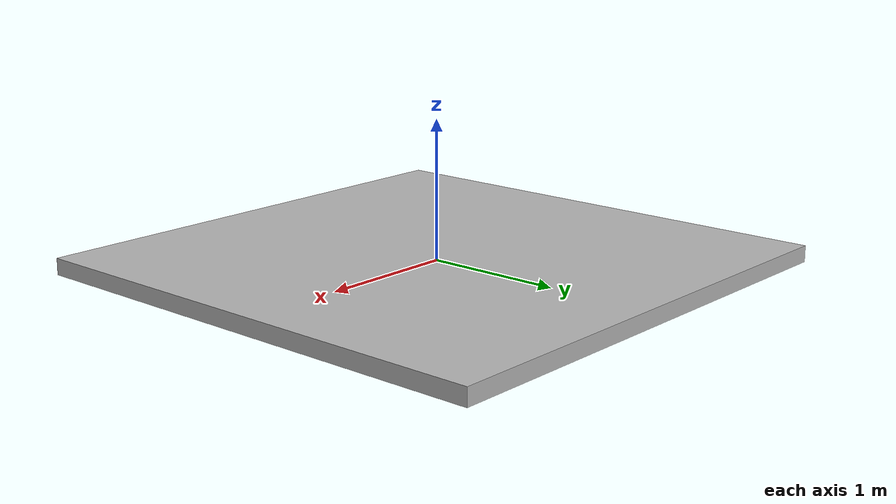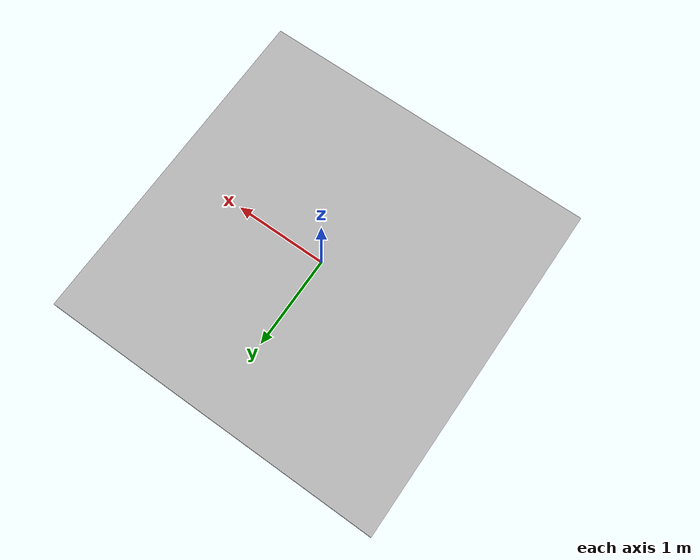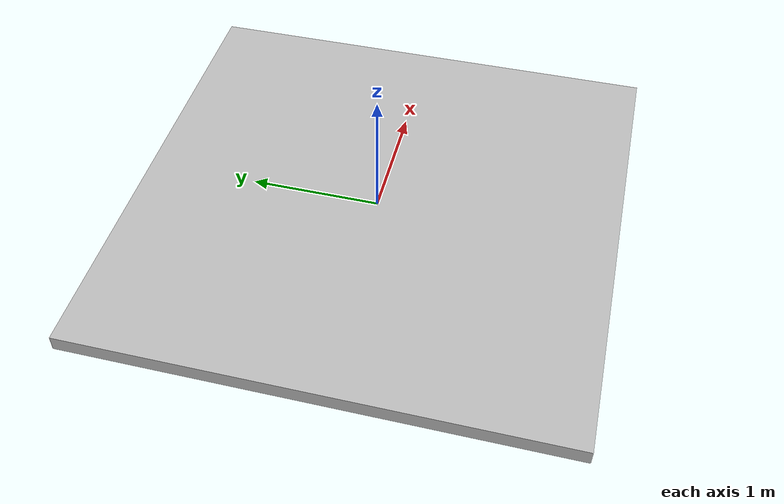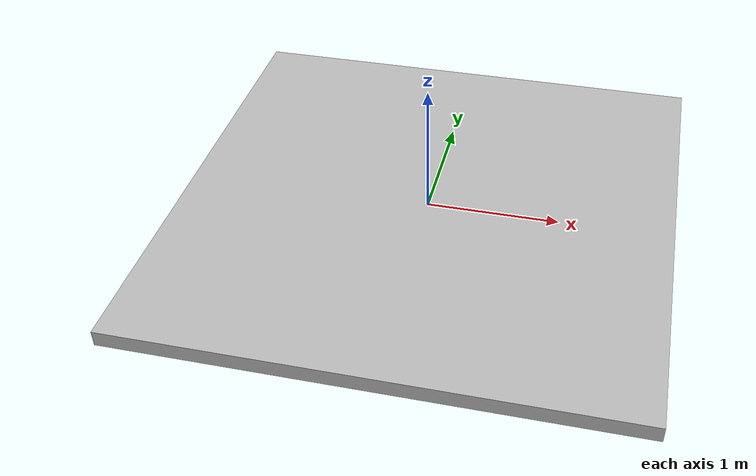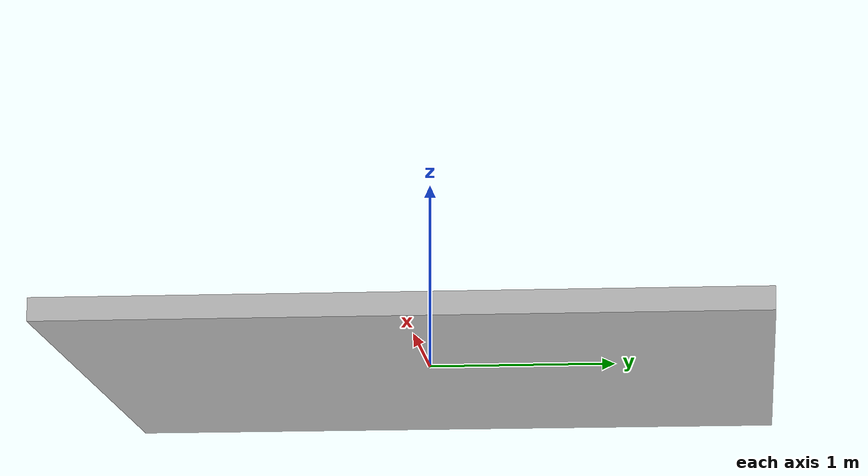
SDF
<?xml version='1.0'?>
<sdf version='1.5'>
  <model name='aruco_map_3000_3000'>
    <static>true</static>
    <link name="link">
      <collision name="collision">
        <geometry>
          <box>
            <size>3.702 3.702 .12</size>
          </box>
        </geometry>
      </collision>
      <visual name="visual">
        <cast_shadows>false</cast_shadows>
        <geometry>
          <box>
            <size>3.702 3.702 .12</size>
          </box>
        </geometry>
        <material>
          <script>
            <uri>model://aruco_map_3000_3000/materials/scripts</uri>
            <uri>model://aruco_map_3000_3000/materials/textures</uri>
            <name>aruco/Image</name>
          </script>
        </material>
      </visual>
    </link>
  </model>
</sdf>
